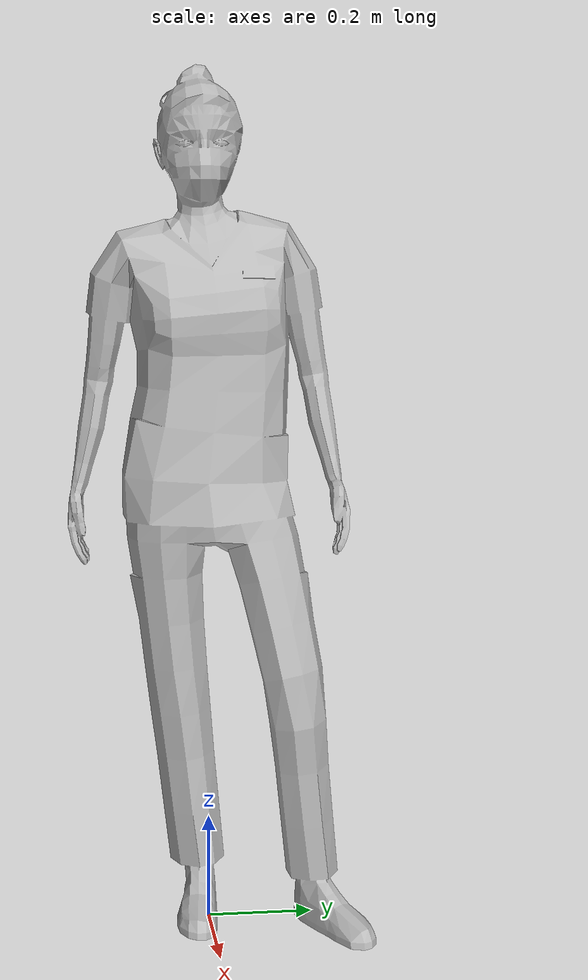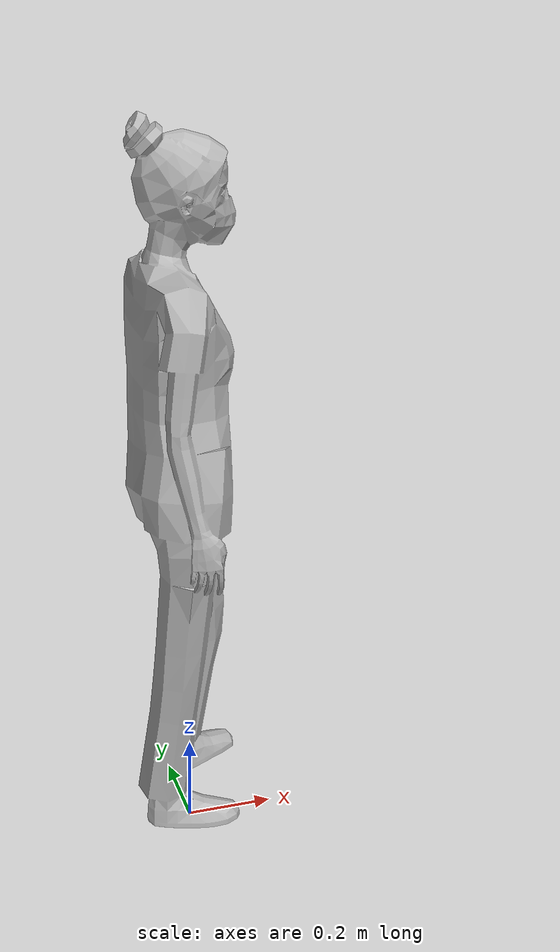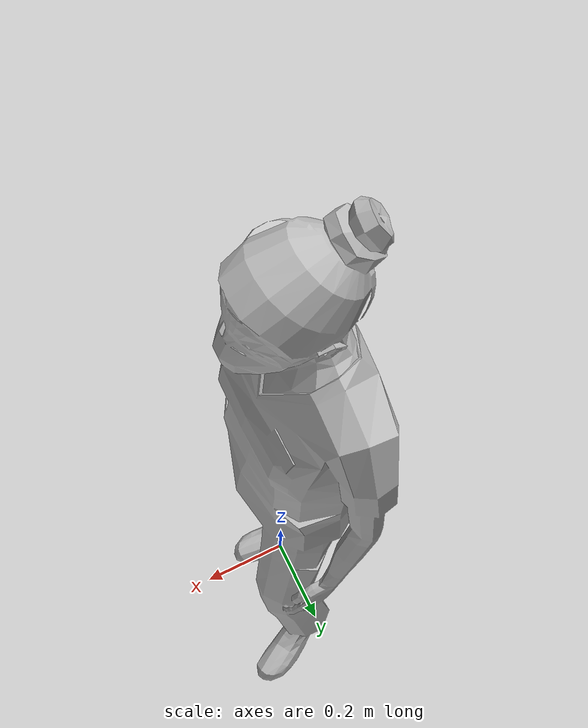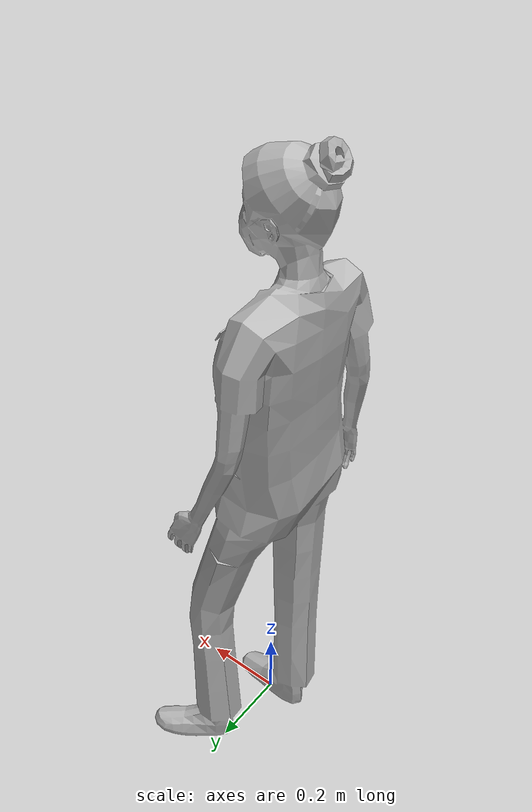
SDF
<?xml version="1.0"?>

<sdf version="1.6">
  <model name='Scrubs'>
   <static>true</static>
    <link name="body">
      <pose>0 0 0 0 0 0</pose>

      <visual name="visual">
        <geometry>
          <mesh>
            <uri>model://Scrubs/meshes/scrubs.obj</uri>
          </mesh>
        </geometry>
      </visual>

      <collision name="collision">
        <geometry>
          <mesh>
            <uri>model://Scrubs/meshes/Scrubs_Col.obj</uri>
          </mesh>
        </geometry>
      </collision>

    </link>
  </model>
</sdf>
